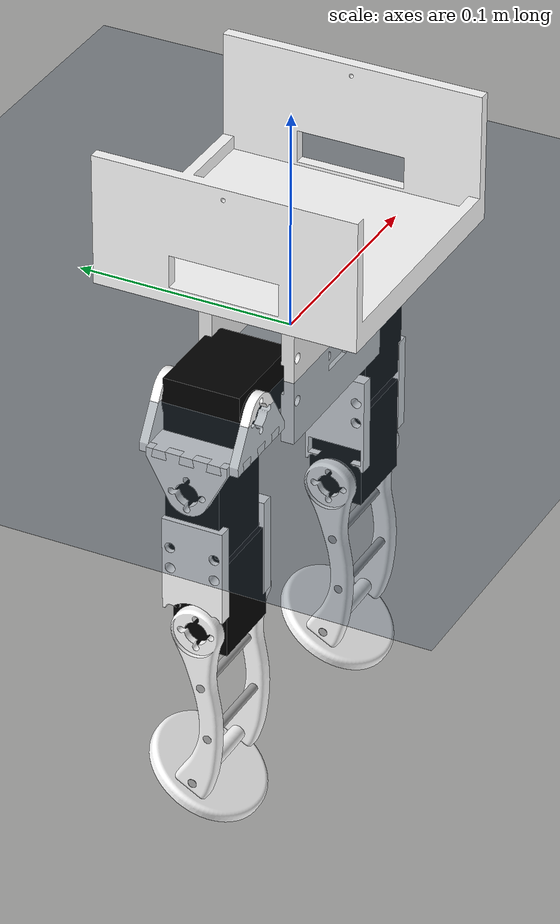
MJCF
<mujoco model="assembly_simple">
  <compiler angle="radian" meshdir="../../meshes/stl/" />
  <asset>
    <mesh name="_" content_type="model/stl" file="_.stl" />
    <mesh name="__1" content_type="model/stl" file="__1.stl" />
    <mesh name="__2" content_type="model/stl" file="__2.stl" />
    <mesh name="Foot" content_type="model/stl" file="Foot.stl" />
    <mesh name="Hip_Base" content_type="model/stl" file="Hip_Base.stl" />
    <mesh name="Hip_Joint_A" content_type="model/stl" file="Hip_Joint_A.stl" />
    <mesh name="Hip_Joint_B" content_type="model/stl" file="Hip_Joint_B.stl" />
    <mesh name="Motor" content_type="model/stl" file="Motor.stl" />
    <mesh name="Part_1" content_type="model/stl" file="Part_1.stl" />
    <mesh name="Tibia" content_type="model/stl" file="Tibia.stl" />
    <mesh name="Tube" content_type="model/stl" file="Tube.stl" />
    <mesh name="Upper_Leg_A" content_type="model/stl" file="Upper_Leg_A.stl" />
    <mesh name="Upper_Leg_B" content_type="model/stl" file="Upper_Leg_B.stl" />
    <texture type="skybox" builtin="gradient" rgb1="0.3 0.5 0.7" rgb2="0 0 0" width="512" height="512" />
    <texture name="grid" type="2d" builtin="checker" rgb1="0.2 0.3 0.4" rgb2="0.1 0.15 0.2" width="512" height="512" />
    <material name="grid" texture="grid" texrepeat="6 6" reflectance="0.1" />
  </asset>
  <worldbody>
    <body name="root">
      <freejoint name="floating_base" />
      <body name="upper_leg_a" pos="0.082375 0.00290272 -0.0679125" quat="0.707105 0 0.707108 0">
        <inertial pos="0.00531306 2.37861e-05 0.00337354" quat="-4.11528e-05 0.713492 7.95405e-05 0.700664" mass="0.004" diaginertia="8.68869e-07 5.85197e-07 3.04357e-07" />
        <geom type="mesh" contype="1" conaffinity="1" group="1" density="0" rgba="1 1 1 1" mesh="Upper_Leg_A" friction="1.0 0.02 0.001" />
        <body name="motor_3" pos="-0.0031625 0.0102723 0.0025" quat="0.707105 0.707108 0 0">
          <inertial pos="-0.0215549 -0.0175 0.0113" quat="0.000517739 0.707107 -0.000517739 0.707107" mass="0.065" diaginertia="2e-5 2e-5 1.5e-5" />
          <geom pos="-0.0213 -0.0175 0.0113" quat="1 0 0 0" type="mesh" contype="1" conaffinity="1" group="1" density="0" rgba="0 0 0 1" mesh="Motor" friction="1.0 0.02 0.001" />
          <body name="upper_leg_b_1" pos="-0.0038 -0.035 0.0226" quat="9.38184e-07 -9.38187e-07 0.707108 -0.707105">
            <inertial pos="-0.00664884 0.0102571 0.00339588" quat="0.000805323 0.710288 -0.000732258 0.70391" mass="0.004" diaginertia="8.06476e-07 5.15095e-07 3.12316e-07" />
            <geom pos="-0.0068375 0.0102277 0" quat="1 0 0 0" type="mesh" contype="1" conaffinity="1" group="1" density="0" rgba="1 1 1 1" mesh="Upper_Leg_B" friction="1.0 0.02 0.001" />
            <body name="motor" pos="-0.01 0 0.0025" quat="0.707105 0.707108 0 0">
              <inertial pos="-0.0215549 -0.0175 -0.0113" quat="0.000517739 0.707107 -0.000517739 0.707107" mass="0.065" diaginertia="2e-5 2e-5 1.5e-5" />
              <geom pos="-0.0213 -0.0175 -0.0113" quat="1 0 0 0" type="mesh" contype="1" conaffinity="1" group="1" density="0" rgba="0 0 0 1" mesh="Motor" friction="1.0 0.02 0.001" />
              <body name="tibia_2" pos="-0.0338 -0.03575 -0.0113" quat="1.32679e-06 0 0 -1">
                <inertial pos="0.0392764 0.00174994 0.00239463" quat="0.503866 0.496106 0.496104 0.503864" mass="0.005" diaginertia="3.81309e-06 3.71187e-06 1.40255e-07" />
                <joint name="knee_l" pos="0 0 0" axis="0 -1 0" range="-1.39626 1.39626" actuatorfrcrange="-2.5 2.5" damping="0.05" />
                <geom pos="0 0.00175 0" quat="1 0 0 0" type="mesh" contype="1" conaffinity="1" group="1" density="0" rgba="1 1 1 1" mesh="Tibia" friction="1.0 0.02 0.001" />
                <body name="tube_3" pos="0.0257439 0.0055 0.00311756" quat="0.707105 0 -0.707108 0">
                  <inertial pos="0 -0.025 0" quat="0.707107 0.707107 0 0" mass="0.005" diaginertia="1.04666e-06 1.04666e-06 1e-08" />
                  <geom pos="0 -0.025 0" quat="1 0 0 0" type="mesh" contype="1" conaffinity="1" group="1" density="0" rgba="0.647059 0.647059 0.647059 1" mesh="Tube" friction="1.0 0.02 0.001" />
                  <body name="tibia_3" pos="0 -0.05 0" quat="0.707105 0 0.707108 0">
                    <inertial pos="0.0135326 0.00374994 -0.000722925" quat="0.503866 0.496106 0.496104 0.503864" mass="0.005" diaginertia="3.81309e-06 3.71187e-06 1.40255e-07" />
                    <geom pos="-0.0257439 0.00375 -0.00311756" quat="1 0 0 0" type="mesh" contype="1" conaffinity="1" group="1" density="0" rgba="1 1 1 1" mesh="Tibia" friction="1.0 0.02 0.001" />
                  </body>
                </body>
                <body name="tube_5" pos="0.0508971 0.0055 0.00617156" quat="9.38184e-07 -0.707108 9.38187e-07 0.707105">
                  <inertial pos="0 0.025 0" quat="0.707107 0.707107 0 0" mass="0.005" diaginertia="1.04666e-06 1.04666e-06 1e-08" />
                  <geom pos="0 0.025 0" quat="1 0 0 0" type="mesh" contype="1" conaffinity="1" group="1" density="0" rgba="0.647059 0.647059 0.647059 1" mesh="Tube" friction="1.0 0.02 0.001" />
                </body>
                <body name="tube_4" pos="0.0761419 0.0055 -0.00113333" quat="9.38184e-07 -0.707108 9.38187e-07 0.707105">
                  <inertial pos="0 0.025 0" quat="0.707107 0.707107 0 0" mass="0.005" diaginertia="1.04666e-06 1.04666e-06 1e-08" />
                  <geom pos="0 0.025 0" quat="1 0 0 0" type="mesh" contype="1" conaffinity="1" group="1" density="0" rgba="0.647059 0.647059 0.647059 1" mesh="Tube" friction="1.0 0.02 0.001" />
                  <body name="foot_1" pos="0 0.025 0" quat="0.682557 0.184702 -0.184702 -0.682559">
                    <inertial pos="-3.09888e-10 1.37245e-11 -0.00858509" quat="0 0.707107 0 0.707107" mass="0.009" diaginertia="3.01706e-06 1.63887e-06 1.53347e-06" />
                    <joint name="ankle_l" pos="0 0 0" axis="1 0 0" range="-0.314159 0.296706" damping="0.02" frictionloss="0.003" />
                    <geom pos="0 0 -0.007" quat="1 0 0 0" type="mesh" contype="0" conaffinity="0" group="1" density="0" rgba="1 1 1 1" mesh="Foot" />
                    <geom name="foot_col_l" type="mesh" mesh="Foot" pos="0 0 -0.007" quat="1 0 0 0" contype="1" conaffinity="1" friction="1.0 0.02 0.001" rgba="0.1 0.5 0.9 0.4" group="3" />
                    <site name="foot_site_l" pos="0 0 -0.007" size="0.03" rgba="0 0 0 0" />
                  </body>
                </body>
              </body>
            </body>
          </body>
          <body name="hip_joint_a" pos="-0.0338 0.00075 0.0113" quat="0.707105 0 0.707108 0">
            <inertial pos="0 0.002 -0.00726623" quat="0.5 0.5 0.5 0.5" mass="0.002" diaginertia="3.08091e-07 2.12364e-07 1.01061e-07" />
            <joint name="hip_pitch_l" pos="0 0 0" axis="0 -1 0" range="-1.39626 1.39626" actuatorfrcrange="-2.5 2.5" damping="0.05" />
            <geom pos="0 0.004 -0.018" quat="1 0 0 0" type="mesh" contype="1" conaffinity="1" group="1" density="0" rgba="1 1 1 1" mesh="Hip_Joint_A" friction="1.0 0.02 0.001" />
            <body name="hip_base" pos="-0.00314735 0.002 -0.016" quat="1.76205e-12 1.32679e-06 -1 -1.32679e-06">
              <inertial pos="-0.00314735 -0.020625 0" quat="0.5 0.5 -0.5 0.5" mass="0.005" diaginertia="1.42852e-06 7.20929e-07 7.20929e-07" />
              <geom pos="-0.00314735 -0.020625 -0.002" quat="1 0 0 0" type="mesh" contype="1" conaffinity="1" group="1" density="0" rgba="1 1 1 1" mesh="Hip_Base" friction="1.0 0.02 0.001" />
              <body name="hip_joint_b_1" pos="0.0174777 -0.0174777 0" quat="0.707105 0 0 -0.707108">
                <inertial pos="0.00317203 0 0.00893469" quat="0.500884 0.499114 0.499114 0.500884" mass="0.002" diaginertia="2.69024e-07 1.72562e-07 1.01796e-07" />
                <geom pos="0.00314735 0.002 -0.002" quat="1 0 0 0" type="mesh" contype="1" conaffinity="1" group="1" density="0" rgba="1 1 1 1" mesh="Hip_Joint_B" friction="1.0 0.02 0.001" />
                <body name="motor_4" pos="0.00314735 -0.002 0.016" quat="1.32679e-06 -1 0 0">
                  <inertial pos="0.0122451 0.01825 0" quat="0.000517739 0.707107 -0.000517739 0.707107" mass="0.065" diaginertia="2e-5 2e-5 1.5e-5" />
                  <joint name="hip_roll_l" pos="0 0 0" axis="0 -1 0" range="-2.26893 0.0872665" actuatorfrcrange="-2.5 2.5" damping="0.05" />
                  <geom pos="0.0125 0.01825 0" quat="1 0 0 0" type="mesh" contype="1" conaffinity="1" group="1" density="0" rgba="0 0 0 1" mesh="Motor" friction="1.0 0.02 0.001" />
                  <body name="composite_part_1__1_" pos="0.03 0.00075 0.0113" quat="1.76038e-12 1.32679e-06 1 1.32679e-06">
                    <inertial pos="0 0.0190036 0" quat="0.5 0.5 0.5 0.5" mass="0.279" diaginertia="6e-4 5e-4 4e-4" />
                    <geom pos="-0.037 0.016 0.01025" quat="1 0 0 0" type="mesh" contype="1" conaffinity="1" group="1" density="0" rgba="0.91 0.91 0.91 1" mesh="_" friction="1.0 0.02 0.001" />
                    <geom pos="-0.037 0.016 0.01025" quat="1 0 0 0" type="mesh" contype="1" conaffinity="1" group="1" density="0" rgba="0.91 0.91 0.91 1" mesh="__1" friction="1.0 0.02 0.001" />
                    <geom pos="-0.037 0.016 0.01025" quat="1 0 0 0" type="mesh" contype="1" conaffinity="1" group="1" density="0" rgba="0.91 0.91 0.91 1" mesh="__2" friction="1.0 0.02 0.001" />
                    <body name="part_1" pos="-0.037 0.016 0.04625">
                      <inertial pos="0 0 0.0143964" quat="0 0.707107 0 0.707107" mass="0.005" diaginertia="1.59469e-05 1.11419e-05 8.07049e-06" />
                      <geom pos="0 0 0" quat="1 0 0 0" type="mesh" contype="1" conaffinity="1" group="1" density="0" rgba="1 1 1 1" mesh="Part_1" friction="1.0 0.02 0.001" />
                    </body>
                    <body name="motor_5" pos="-0.074 0 0.0205">
                      <inertial pos="-0.0177549 0.0175 -0.0113" quat="0.000517739 0.707107 -0.000517739 0.707107" mass="0.065" diaginertia="2e-5 2e-5 1.5e-5" />
                      <geom pos="-0.0175 0.0175 -0.0113" quat="1 0 0 0" type="mesh" contype="1" conaffinity="1" group="1" density="0" rgba="0 0 0 1" mesh="Motor" friction="1.0 0.02 0.001" />
                      <body name="hip_joint_a_2" pos="-0.03 -0.00075 -0.0113" quat="1 0 0 0">
                        <inertial pos="0 -0.002 -0.00726623" quat="0.5 0.5 0.5 0.5" mass="0.002" diaginertia="3.08091e-07 2.12364e-07 1.01061e-07" />
                        <joint name="hip_roll_r" pos="0 0 0" axis="0 1 0" range="-0.0872665 2.26893" actuatorfrcrange="-2.5 2.5" damping="0.05" />
                        <geom pos="0 0 -0.018" quat="1 0 0 0" type="mesh" contype="1" conaffinity="1" group="1" density="0" rgba="1 1 1 1" mesh="Hip_Joint_A" friction="1.0 0.02 0.001" />
                        <body name="hip_base_1" pos="-0.00314735 -0.002 -0.016" quat="1.76036e-12 1.32679e-06 -1 -1.32679e-06">
                          <inertial pos="-0.00314735 0.020625 0" quat="0.5 0.5 -0.5 0.5" mass="0.005" diaginertia="1.42852e-06 7.20929e-07 7.20929e-07" />
                          <geom pos="-0.00314735 0.020625 -0.002" quat="1 0 0 0" type="mesh" contype="1" conaffinity="1" group="1" density="0" rgba="1 1 1 1" mesh="Hip_Base" friction="1.0 0.02 0.001" />
                          <body name="hip_joint_b_2" pos="0.0174777 0.0237723 0" quat="0.707105 0 0 -0.707108">
                            <inertial pos="0.00317203 0 0.00893469" quat="0.500884 0.499114 0.499114 0.500884" mass="0.002" diaginertia="2.69024e-07 1.72562e-07 1.01796e-07" />
                            <geom pos="0.00314735 0.002 -0.002" quat="1 0 0 0" type="mesh" contype="1" conaffinity="1" group="1" density="0" rgba="1 1 1 1" mesh="Hip_Joint_B" friction="1.0 0.02 0.001" />
                            <body name="motor_1" pos="0.00314735 -0.002 0.016" quat="9.38184e-07 0.707108 -9.38187e-07 0.707105">
                              <inertial pos="0.0122451 0.01825 0" quat="0.000517739 0.707107 -0.000517739 0.707107" mass="0.065" diaginertia="2e-5 2e-5 1.5e-5" />
                              <joint name="hip_pitch_r" pos="0 0 0" axis="0 -1 0" range="-1.39626 1.39626" actuatorfrcrange="-2.5 2.5" damping="0.05" />
                              <geom pos="0.0125 0.01825 0" quat="1 0 0 0" type="mesh" contype="1" conaffinity="1" group="1" density="0" rgba="0 0 0 1" mesh="Motor" friction="1.0 0.02 0.001" />
                              <body name="upper_leg_a_1" pos="0.03 0.00075 0.0113" quat="0.707105 0.707108 0 0">
                                <inertial pos="0.00847556 -0.0102485 -0.000126464" quat="-4.11528e-05 0.713492 7.95405e-05 0.700664" mass="0.004" diaginertia="8.68869e-07 5.85197e-07 3.04357e-07" />
                                <geom pos="0.0031625 -0.0102723 -0.0035" quat="1 0 0 0" type="mesh" contype="1" conaffinity="1" group="1" density="0" rgba="1 1 1 1" mesh="Upper_Leg_A" friction="1.0 0.02 0.001" />
                                <body name="motor_2" pos="0.01 -0.0205 -0.0025" quat="9.38184e-07 -9.38187e-07 0.707108 -0.707105">
                                  <inertial pos="-0.0177549 0.0175 -0.0113" quat="0.000517739 0.707107 -0.000517739 0.707107" mass="0.065" diaginertia="2e-5 2e-5 1.5e-5" />
                                  <geom pos="-0.0175 0.0175 -0.0113" quat="1 0 0 0" type="mesh" contype="1" conaffinity="1" group="1" density="0" rgba="0 0 0 1" mesh="Motor" friction="1.0 0.02 0.001" />
                                  <body name="tibia_1" pos="-0.03 -0.00075 -0.0113" quat="1.76163e-12 1.32679e-06 1 1.32679e-06">
                                    <inertial pos="0.0392764 -0.00175006 0.00239463" quat="0.503866 0.496106 0.496104 0.503864" mass="0.005" diaginertia="3.81309e-06 3.71187e-06 1.40255e-07" />
                                    <joint name="knee_r" pos="0 0 0" axis="0 1 0" range="-1.39626 1.39626" actuatorfrcrange="-2.5 2.5" damping="0.05" />
                                    <geom pos="0 -0.00175 0" quat="1 0 0 0" type="mesh" contype="1" conaffinity="1" group="1" density="0" rgba="1 1 1 1" mesh="Tibia" friction="1.0 0.02 0.001" />
                                    <body name="tube" pos="0.0257439 -0.0055 0.00311756" quat="0.707105 0 -0.707108 0">
                                      <inertial pos="0 0.025 0" quat="0.707107 0.707107 0 0" mass="0.005" diaginertia="1.04666e-06 1.04666e-06 1e-08" />
                                      <geom pos="0 0.025 0" quat="1 0 0 0" type="mesh" contype="1" conaffinity="1" group="1" density="0" rgba="0.647059 0.647059 0.647059 1" mesh="Tube" friction="1.0 0.02 0.001" />
                                      <body name="tibia" pos="0 0.05 0" quat="0.707105 0 0.707108 0">
                                        <inertial pos="0.0135326 -0.00375006 -0.000722925" quat="0.503866 0.496106 0.496104 0.503864" mass="0.005" diaginertia="3.81309e-06 3.71187e-06 1.40255e-07" />
                                        <geom pos="-0.0257439 -0.00375 -0.00311756" quat="1 0 0 0" type="mesh" contype="1" conaffinity="1" group="1" density="0" rgba="1 1 1 1" mesh="Tibia" friction="1.0 0.02 0.001" />
                                        <body name="tube_1" pos="0.0251533 0 0.003054" quat="9.38184e-07 0.707108 9.38187e-07 -0.707105">
                                          <inertial pos="0 0.025 0" quat="0.707107 0.707107 0 0" mass="0.005" diaginertia="1.04666e-06 1.04666e-06 1e-08" />
                                          <geom pos="0 0.025 0" quat="1 0 0 0" type="mesh" contype="1" conaffinity="1" group="1" density="0" rgba="0.647059 0.647059 0.647059 1" mesh="Tube" friction="1.0 0.02 0.001" />
                                        </body>
                                        <body name="tube_2" pos="0.0503981 0 -0.00425089" quat="9.38184e-07 -0.707108 9.38187e-07 0.707105">
                                          <inertial pos="0 0.025 0" quat="0.707107 0.707107 0 0" mass="0.005" diaginertia="1.04666e-06 1.04666e-06 1e-08" />
                                          <geom pos="0 0.025 0" quat="1 0 0 0" type="mesh" contype="1" conaffinity="1" group="1" density="0" rgba="0.647059 0.647059 0.647059 1" mesh="Tube" friction="1.0 0.02 0.001" />
                                          <body name="foot" pos="0 0.025 0" quat="0.682227 0.185914 -0.185915 -0.68223">
                                            <inertial pos="-3.09888e-10 1.37245e-11 -0.00858509" quat="0 0.707107 0 0.707107" mass="0.009" diaginertia="3.01706e-06 1.63887e-06 1.53347e-06" />
                                            <joint name="ankle_r" pos="0 0 0" axis="1 0 0" range="-0.314159 0.296706" damping="0.02" frictionloss="0.003" />
                                            <geom pos="0 0 -0.007" quat="1 0 0 0" type="mesh" contype="0" conaffinity="0" group="1" density="0" rgba="1 1 1 1" mesh="Foot" />
                                            <geom name="foot_col_r" type="mesh" mesh="Foot" pos="0 0 -0.007" quat="1 0 0 0" contype="1" conaffinity="1" friction="1.0 0.02 0.001" rgba="0.1 0.5 0.9 0.4" group="3" />
                                            <site name="foot_site_r" pos="0 0 -0.007" size="0.03" rgba="0 0 0 0" />
                                          </body>
                                        </body>
                                      </body>
                                    </body>
                                  </body>
                                </body>
                              </body>
                              <body name="upper_leg_b" pos="0.0338 0.03575 0.0113" quat="9.38184e-07 9.38187e-07 -0.707108 -0.707105">
                                <inertial pos="-0.00664884 -0.0102429 0.00339588" quat="0.000805323 0.710288 -0.000732258 0.70391" mass="0.004" diaginertia="8.06476e-07 5.15095e-07 3.12316e-07" />
                                <geom pos="-0.0068375 -0.0102723 0" quat="1 0 0 0" type="mesh" contype="1" conaffinity="1" group="1" density="0" rgba="1 1 1 1" mesh="Upper_Leg_B" friction="1.0 0.02 0.001" />
                              </body>
                            </body>
                          </body>
                          <body name="hip_joint_a_3" pos="0 0.04125 0" quat="1.76036e-12 -1.32679e-06 1 -1.32679e-06">
                            <inertial pos="0.00314735 0 0.00873377" quat="0.5 0.5 0.5 0.5" mass="0.002" diaginertia="3.08091e-07 2.12364e-07 1.01061e-07" />
                            <geom pos="0.00314735 0.002 -0.002" quat="1 0 0 0" type="mesh" contype="1" conaffinity="1" group="1" density="0" rgba="1 1 1 1" mesh="Hip_Joint_A" friction="1.0 0.02 0.001" />
                          </body>
                          <body name="hip_joint_b_3" pos="-0.0237723 0.011183 0" quat="0.707105 0 0 0.707108">
                            <inertial pos="0.00946672 0 0.00893469" quat="0.500884 0.499114 0.499114 0.500884" mass="0.002" diaginertia="2.69024e-07 1.72562e-07 1.01796e-07" />
                            <geom pos="0.00944204 0.002 -0.002" quat="1 0 0 0" type="mesh" contype="1" conaffinity="1" group="1" density="0" rgba="1 1 1 1" mesh="Hip_Joint_B" friction="1.0 0.02 0.001" />
                          </body>
                        </body>
                      </body>
                    </body>
                    <site name="imu" pos="0 0 0" size="0.005" rgba="1 0 0 0" />
                  </body>
                </body>
              </body>
              <body name="hip_joint_a_1" pos="0 -0.04125 0" quat="1.75872e-12 1.32679e-06 -1 -1.32679e-06">
                <inertial pos="0.00314735 0 0.00873377" quat="0.5 0.5 0.5 0.5" mass="0.002" diaginertia="3.08091e-07 2.12364e-07 1.01061e-07" />
                <geom pos="0.00314735 0.002 -0.002" quat="1 0 0 0" type="mesh" contype="1" conaffinity="1" group="1" density="0" rgba="1 1 1 1" mesh="Hip_Joint_A" friction="1.0 0.02 0.001" />
              </body>
              <body name="hip_joint_b" pos="-0.0237723 -0.030067 0" quat="0.707105 0 0 0.707108">
                <inertial pos="0.00946672 0 0.00893469" quat="0.500884 0.499114 0.499114 0.500884" mass="0.002" diaginertia="2.69024e-07 1.72562e-07 1.01796e-07" />
                <geom pos="0.00944204 0.002 -0.002" quat="1 0 0 0" type="mesh" contype="1" conaffinity="1" group="1" density="0" rgba="1 1 1 1" mesh="Hip_Joint_B" friction="1.0 0.02 0.001" />
              </body>
            </body>
          </body>
        </body>
      </body>
    </body>
    <light pos="0 0 2" dir="0 0 -1" directional="true" />
    <geom name="floor" type="plane" size="0 0 0.05" material="grid" contype="1" conaffinity="1" friction="1.0 0.02 0.001" />
  </worldbody>
  <option timestep="0.002" integrator="implicitfast" />
  <visual>
    <headlight diffuse="0.6 0.6 0.6" ambient="0.3 0.3 0.3" specular="0 0 0" />
    <global offwidth="1280" offheight="960" />
  </visual>
  <default>
    <joint armature="0.01" frictionloss="0.002" />
  </default>
  <actuator>
    <position name="act_hip_roll_l" joint="hip_roll_l" kp="40.0" kv="10.0" forcerange="-2.5 2.5" />
    <position name="act_hip_pitch_l" joint="hip_pitch_l" kp="40.0" kv="10.0" forcerange="-2.5 2.5" />
    <position name="act_knee_l" joint="knee_l" kp="40.0" kv="10.0" forcerange="-2.5 2.5" />
    <position name="act_hip_roll_r" joint="hip_roll_r" kp="40.0" kv="10.0" forcerange="-2.5 2.5" />
    <position name="act_hip_pitch_r" joint="hip_pitch_r" kp="40.0" kv="10.0" forcerange="-2.5 2.5" />
    <position name="act_knee_r" joint="knee_r" kp="40.0" kv="10.0" forcerange="-2.5 2.5" />
  </actuator>
  <sensor>
    <jointpos name="pos_hip_roll_l" joint="hip_roll_l" />
    <jointvel name="vel_hip_roll_l" joint="hip_roll_l" />
    <jointpos name="pos_hip_pitch_l" joint="hip_pitch_l" />
    <jointvel name="vel_hip_pitch_l" joint="hip_pitch_l" />
    <jointpos name="pos_knee_l" joint="knee_l" />
    <jointvel name="vel_knee_l" joint="knee_l" />
    <jointpos name="pos_hip_roll_r" joint="hip_roll_r" />
    <jointvel name="vel_hip_roll_r" joint="hip_roll_r" />
    <jointpos name="pos_hip_pitch_r" joint="hip_pitch_r" />
    <jointvel name="vel_hip_pitch_r" joint="hip_pitch_r" />
    <jointpos name="pos_knee_r" joint="knee_r" />
    <jointvel name="vel_knee_r" joint="knee_r" />
    <jointpos name="pos_ankle_l" joint="ankle_l" />
    <jointvel name="vel_ankle_l" joint="ankle_l" />
    <jointpos name="pos_ankle_r" joint="ankle_r" />
    <jointvel name="vel_ankle_r" joint="ankle_r" />
    <framequat name="torso_quat" objtype="site" objname="imu" />
    <gyro name="torso_gyro" site="imu" />
    <accelerometer name="torso_acc" site="imu" />
    <framepos name="torso_pos" objtype="site" objname="imu" />
    <framelinvel name="torso_linvel" objtype="site" objname="imu" />
    <frameangvel name="torso_angvel" objtype="site" objname="imu" />
    <touch name="touch_l" site="foot_site_l" />
    <touch name="touch_r" site="foot_site_r" />
  </sensor>
  <keyframe>
    <key name="stand" qpos="0 0 0.203 1 0 0 0 0 0 0 0 0 0 0 0" ctrl="0 0 0 0 0 0" />
  </keyframe>
</mujoco>
